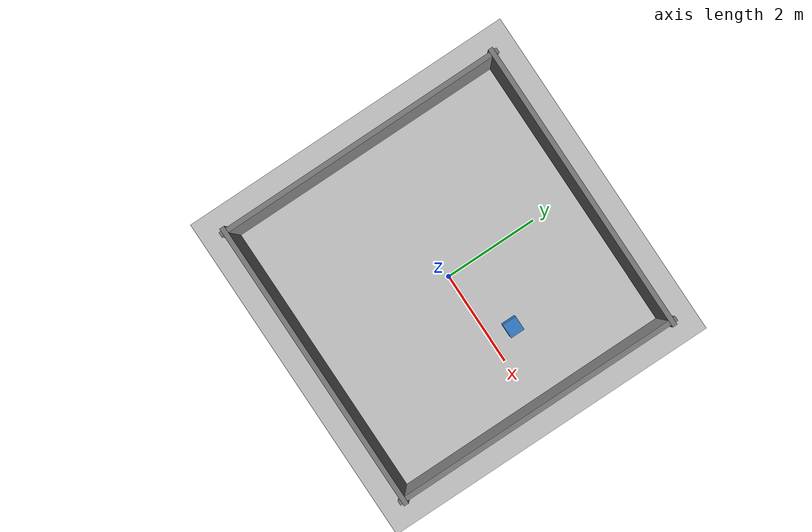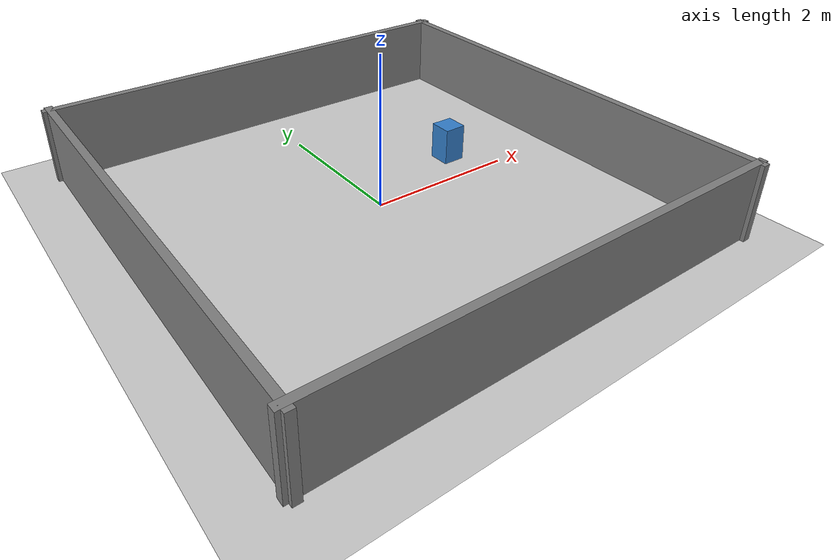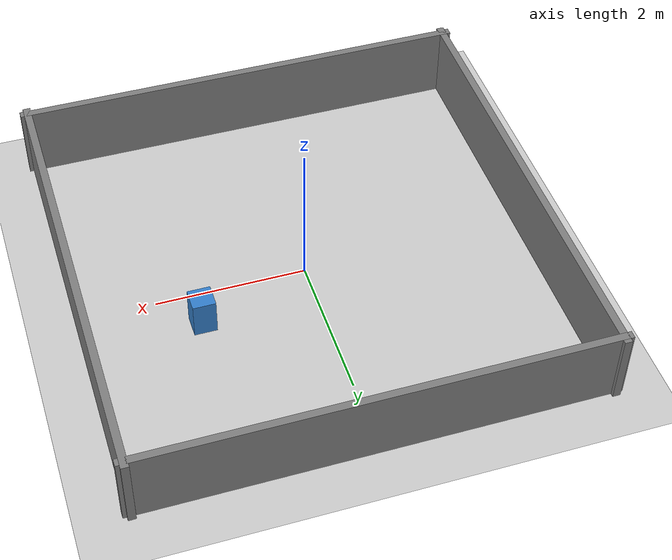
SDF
<?xml version="1.0" ?>
<sdf version="1.8">
  <world name="burgerbot_world">

    <physics name="1ms" type="ignored">
      <max_step_size>0.001</max_step_size>
      <real_time_factor>1.0</real_time_factor>
    </physics>

    <!-- Core simulation systems -->
    <plugin filename="gz-sim-physics-system"
            name="gz::sim::systems::Physics"/>
    <plugin filename="gz-sim-user-commands-system"
            name="gz::sim::systems::UserCommands"/>
    <plugin filename="gz-sim-scene-broadcaster-system"
            name="gz::sim::systems::SceneBroadcaster"/>

    <!-- Sensor systems — REQUIRED for LiDAR and IMU to produce data -->
    <plugin filename="gz-sim-sensors-system"
            name="gz::sim::systems::Sensors">
      <render_engine>ogre2</render_engine>
    </plugin>
    <plugin filename="gz-sim-imu-system"
            name="gz::sim::systems::Imu"/>

    <!-- Lighting -->
    <light type="directional" name="sun">
      <cast_shadows>true</cast_shadows>
      <pose>0 0 10 0 0 0</pose>
      <diffuse>0.8 0.8 0.8 1</diffuse>
      <specular>0.2 0.2 0.2 1</specular>
      <attenuation>
        <range>1000</range>
        <constant>0.9</constant>
        <linear>0.01</linear>
        <quadratic>0.001</quadratic>
      </attenuation>
      <direction>-0.5 0.1 -0.9</direction>
    </light>

    <!-- Ground plane -->
    <model name="ground_plane">
      <static>true</static>
      <link name="link">
        <collision name="collision">
          <geometry><plane><normal>0 0 1</normal><size>20 20</size></plane></geometry>
        </collision>
        <visual name="visual">
          <geometry><plane><normal>0 0 1</normal><size>20 20</size></plane></geometry>
          <material>
            <ambient>0.8 0.8 0.8 1</ambient>
            <diffuse>0.8 0.8 0.8 1</diffuse>
          </material>
        </visual>
      </link>
    </model>

    <!-- Walls: 6 x 6 m room -->
    <model name="north_wall">
      <static>true</static>
      <pose>0 3 0.5 0 0 0</pose>
      <link name="link">
        <collision name="c"><geometry><box><size>6.2 0.1 1</size></box></geometry></collision>
        <visual name="v">
          <geometry><box><size>6.2 0.1 1</size></box></geometry>
          <material><ambient>0.5 0.5 0.5 1</ambient></material>
        </visual>
      </link>
    </model>

    <model name="south_wall">
      <static>true</static>
      <pose>0 -3 0.5 0 0 0</pose>
      <link name="link">
        <collision name="c"><geometry><box><size>6.2 0.1 1</size></box></geometry></collision>
        <visual name="v">
          <geometry><box><size>6.2 0.1 1</size></box></geometry>
          <material><ambient>0.5 0.5 0.5 1</ambient></material>
        </visual>
      </link>
    </model>

    <model name="east_wall">
      <static>true</static>
      <pose>3 0 0.5 0 0 0</pose>
      <link name="link">
        <collision name="c"><geometry><box><size>0.1 6.2 1</size></box></geometry></collision>
        <visual name="v">
          <geometry><box><size>0.1 6.2 1</size></box></geometry>
          <material><ambient>0.5 0.5 0.5 1</ambient></material>
        </visual>
      </link>
    </model>

    <model name="west_wall">
      <static>true</static>
      <pose>-3 0 0.5 0 0 0</pose>
      <link name="link">
        <collision name="c"><geometry><box><size>0.1 6.2 1</size></box></geometry></collision>
        <visual name="v">
          <geometry><box><size>0.1 6.2 1</size></box></geometry>
          <material><ambient>0.5 0.5 0.5 1</ambient></material>
        </visual>
      </link>
    </model>

    <!-- Box obstacle for richer SLAM maps -->
    <model name="box_obstacle">
      <static>true</static>
      <pose>1.5 0.5 0.25 0 0 0</pose>
      <link name="link">
        <collision name="c"><geometry><box><size>0.3 0.3 0.5</size></box></geometry></collision>
        <visual name="v">
          <geometry><box><size>0.3 0.3 0.5</size></box></geometry>
          <material><ambient>0.2 0.5 0.8 1</ambient></material>
        </visual>
      </link>
    </model>

  </world>
</sdf>
